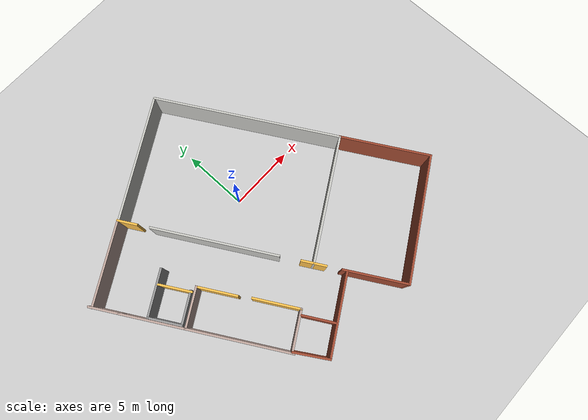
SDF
<sdf version="1.6">
 <world name="default">
  <light name="sun" type="directional">
   <pose>0 0 10 0 -0 0</pose>
   <diffuse>0.8 0.8 0.8 1</diffuse>
   <specular>0.1 0.1 0.1 1</specular>
   <attenuation>
    <range>1000</range>
    <constant>0.9</constant>
    <linear>0.01</linear>
    <quadratic>0.001</quadratic>
   </attenuation>
   <direction>-0.5 0.5 -1</direction>
  </light>
  <model name="ground_plane">
   <static>1</static>
   <link name="link">
    <collision name="collision">
     <geometry><plane><normal>0 0 1</normal><size>100 100</size></plane></geometry>
     <surface><friction><ode><mu>100</mu><mu2>50</mu2></ode></friction></surface>
    </collision>
    <visual name="visual">
     <cast_shadows>0</cast_shadows>
     <geometry><plane><normal>0 0 1</normal><size>100 100</size></plane></geometry>
     <material>
      <script><uri>file://media/materials/scripts/gazebo.material</uri><name>Gazebo/Grey</name></script>
     </material>
    </visual>
   </link>
  </model>
  <gravity>0 0 -9.8</gravity>
  <magnetic_field>6e-06 2.3e-05 -4.2e-05</magnetic_field>
  <atmosphere type="adiabatic"/>
  <physics name="default_physics" default="0" type="ode">
   <max_step_size>0.001</max_step_size>
   <real_time_factor>1</real_time_factor>
   <real_time_update_rate>1000</real_time_update_rate>
  </physics>
  <scene><ambient>0.4 0.4 0.4 1</ambient><background>0.7 0.7 0.7 1</background><shadows>1</shadows></scene>
  <spherical_coordinates>
   <surface_model>EARTH_WGS84</surface_model>
   <latitude_deg>0</latitude_deg>
   <longitude_deg>0</longitude_deg>
   <elevation>0</elevation>
   <heading_deg>0</heading_deg>
  </spherical_coordinates>
  <model name="building_monitor.world">
   <pose>-0.495018 -1.745 0 0 -0 0</pose>
   <link name="Wall_13">
    <collision name="Wall_13_Collision">
     <geometry><box><size>9.25 0.15 2.5</size></box></geometry>
     <pose>0 0 1.25 0 -0 0</pose>
    </collision>
    <visual name="Wall_13_Visual">
     <pose>0 0 1.25 0 -0 0</pose>
     <geometry><box><size>9.25 0.15 2.5</size></box></geometry>
     <material>
      <script><uri>file://media/materials/scripts/gazebo.material</uri><name>Gazebo/CeilingTiled</name></script>
      <ambient>1 0.764706 0.305882 1</ambient>
     </material>
     <meta><layer>0</layer></meta>
    </visual>
    <pose>-3.03306 0.582973 0 0 -0 2.0944</pose>
   </link>
   <link name="Wall_15">
    <collision name="Wall_15_Collision">
     <geometry><box><size>1.5 0.15 2.5</size></box></geometry>
     <pose>0 0 1.25 0 -0 0</pose>
    </collision>
    <visual name="Wall_15_Visual">
     <pose>0 0 1.25 0 -0 0</pose>
     <geometry><box><size>1.5 0.15 2.5</size></box></geometry>
     <material>
      <script><uri>file://media/materials/scripts/gazebo.material</uri><name>Gazebo/Grey</name></script>
      <ambient>1 0.764706 0.305882 1</ambient>
     </material>
     <meta><layer>0</layer></meta>
    </visual>
    <pose>-6.14786 5.96796 0 0 -0 2.0944</pose>
   </link>
   <link name="Wall_2">
    <collision name="Wall_2_Collision">
     <geometry><box><size>9.39101 0.15 2.5</size></box></geometry>
     <pose>0 0 1.25 0 -0 0</pose>
    </collision>
    <visual name="Wall_2_Visual">
     <pose>0 0 1.25 0 -0 0</pose>
     <geometry><box><size>9.39101 0.15 2.5</size></box></geometry>
     <material>
      <script><uri>file://media/materials/scripts/gazebo.material</uri><name>Gazebo/CeilingTiled</name></script>
      <ambient>0.435294 0.796078 0.67451 1</ambient>
     </material>
     <meta><layer>0</layer></meta>
    </visual>
    <pose>-2.34321 8.88263 0 0 0 -2.61806</pose>
   </link>
   <link name="Wall_20">
    <collision name="Wall_20_Collision">
     <geometry><box><size>2.5 0.15 2.5</size></box></geometry>
     <pose>0 0 1.25 0 -0 0</pose>
    </collision>
    <visual name="Wall_20_Visual">
     <pose>0 0 1.25 0 -0 0</pose>
     <geometry><box><size>2.5 0.15 2.5</size></box></geometry>
     <material>
      <script><uri>file://media/materials/scripts/gazebo.material</uri><name>Gazebo/Grey</name></script>
      <ambient>1 1 1 1</ambient>
     </material>
     <meta><layer>0</layer></meta>
    </visual>
    <pose>-9.13452 -0.735835 0 0 -0 2.0944</pose>
   </link>
   <link name="Wall_22">
    <collision name="Wall_22_Collision">
     <geometry><box><size>2.5 0.15 2.5</size></box></geometry>
     <pose>0 0 1.25 0 -0 0</pose>
    </collision>
    <visual name="Wall_22_Visual">
     <pose>0 0 1.25 0 -0 0</pose>
     <geometry><box><size>2.5 0.15 2.5</size></box></geometry>
     <material>
      <script><uri>file://media/materials/scripts/gazebo.material</uri><name>Gazebo/Grey</name></script>
      <ambient>1 0.764706 0.305882 1</ambient>
     </material>
     <meta><layer>0</layer></meta>
    </visual>
    <pose>-7.10369 0.328506 0 0 0 -1.0472</pose>
   </link>
   <link name="Wall_25">
    <collision name="Wall_25_Collision">
     <geometry><box><size>2.5 0.15 2.5</size></box></geometry>
     <pose>0 0 1.25 0 -0 0</pose>
    </collision>
    <visual name="Wall_25_Visual">
     <pose>0 0 1.25 0 -0 0</pose>
     <geometry><box><size>2.5 0.15 2.5</size></box></geometry>
     <material>
      <script><uri>file://media/materials/scripts/gazebo.material</uri><name>Gazebo/Grey</name></script>
      <ambient>1 1 1 1</ambient>
     </material>
     <meta><layer>0</layer></meta>
    </visual>
    <pose>-7.52944 -1.16592 0 0 -0 0.523599</pose>
   </link>
   <link name="Wall_28">
    <collision name="Wall_28_Collision">
     <geometry><box><size>3.5 0.15 2.5</size></box></geometry>
     <pose>0 0 1.25 0 -0 0</pose>
    </collision>
    <visual name="Wall_28_Visual">
     <pose>0 0 1.25 0 -0 0</pose>
     <geometry><box><size>3.5 0.15 2.5</size></box></geometry>
     <material>
      <script><uri>file://media/materials/scripts/gazebo.material</uri><name>Gazebo/Grey</name></script>
      <ambient>1 1 1 1</ambient>
     </material>
     <meta><layer>0</layer></meta>
    </visual>
    <pose>-8.27143 1.11924 0 0 -0 0.523599</pose>
   </link>
   <link name="Wall_30">
    <collision name="Wall_30_Collision">
     <geometry><box><size>3 0.15 2.5</size></box></geometry>
     <pose>0 0 1.25 0 -0 0</pose>
    </collision>
    <visual name="Wall_30_Visual">
     <pose>0 0 1.25 0 -0 0</pose>
     <geometry><box><size>3 0.15 2.5</size></box></geometry>
     <material>
      <script><uri>file://media/materials/scripts/gazebo.material</uri><name>Gazebo/Grey</name></script>
      <ambient>0.760784 0.662745 0.627451 1</ambient>
     </material>
     <meta><layer>0</layer></meta>
    </visual>
    <pose>-7.29934 -1.37095 0 0 -0 0.523599</pose>
   </link>
   <link name="Wall_31">
    <collision name="Wall_31_Collision">
     <geometry><box><size>3 0.15 2.5</size></box></geometry>
     <pose>0 0 1.25 0 -0 0</pose>
    </collision>
    <visual name="Wall_31_Visual">
     <pose>0 0 1.25 0 -0 0</pose>
     <geometry><box><size>3 0.15 2.5</size></box></geometry>
     <material>
      <script><uri>file://media/materials/scripts/gazebo.material</uri><name>Gazebo/Grey</name></script>
      <ambient>1 0.764706 0.305882 1</ambient>
     </material>
     <meta><layer>0</layer></meta>
    </visual>
    <pose>-5.35275 -1.89253 0 0 0 -1.0472</pose>
   </link>
   <link name="Wall_33">
    <collision name="Wall_33_Collision">
     <geometry><box><size>3.5 0.15 2.5</size></box></geometry>
     <pose>0 0 1.25 0 -0 0</pose>
    </collision>
    <visual name="Wall_33_Visual">
     <pose>0 0 1.25 0 -0 0</pose>
     <geometry><box><size>3.5 0.15 2.5</size></box></geometry>
     <material>
      <script><uri>file://media/materials/scripts/gazebo.material</uri><name>Gazebo/Grey</name></script>
      <ambient>1 0.764706 0.305882 1</ambient>
     </material>
     <meta><layer>0</layer></meta>
    </visual>
    <pose>-3.21158 -5.43366 0 0 -0 2.0944</pose>
   </link>
   <link name="Wall_35">
    <collision name="Wall_35_Collision">
     <geometry><box><size>7.5 0.15 2.5</size></box></geometry>
     <pose>0 0 1.25 0 -0 0</pose>
    </collision>
    <visual name="Wall_35_Visual">
     <pose>0 0 1.25 0 -0 0</pose>
     <geometry><box><size>7.5 0.15 2.5</size></box></geometry>
     <material>
      <script><uri>file://media/materials/scripts/gazebo.material</uri><name>Gazebo/Grey</name></script>
      <ambient>0.760784 0.662745 0.627451 1</ambient>
     </material>
     <meta><layer>0</layer></meta>
    </visual>
    <pose>-6.69592 -5.26609 0 0 0 -1.0472</pose>
   </link>
   <link name="Wall_37">
    <collision name="Wall_37_Collision">
     <geometry><box><size>3 0.15 2.5</size></box></geometry>
     <pose>0 0 1.25 0 -0 0</pose>
    </collision>
    <visual name="Wall_37_Visual">
     <pose>0 0 1.25 0 -0 0</pose>
     <geometry><box><size>3 0.15 2.5</size></box></geometry>
     <material>
      <script><uri>file://media/materials/scripts/gazebo.material</uri><name>Gazebo/Grey</name></script>
      <ambient>0.760784 0.662745 0.627451 1</ambient>
     </material>
     <meta><layer>0</layer></meta>
    </visual>
    <pose>-3.60817 -7.59675 0 0 0 -2.61799</pose>
   </link>
   <link name="Wall_39">
    <collision name="Wall_39_Collision">
     <geometry><box><size>6.75 0.15 2.5</size></box></geometry>
     <pose>0 0 1.25 0 -0 0</pose>
    </collision>
    <visual name="Wall_39_Visual">
     <pose>0 0 1.25 0 -0 0</pose>
     <geometry><box><size>6.75 0.15 2.5</size></box></geometry>
     <material>
      <script><uri>file://media/materials/scripts/gazebo.material</uri><name>Gazebo/Bricks</name></script>
      <ambient>1 1 1 1</ambient>
     </material>
     <meta><layer>0</layer></meta>
    </visual>
    <pose>10.2334 -3.65973 0 0 0 -1.0472</pose>
   </link>
   <link name="Wall_40">
    <collision name="Wall_40_Collision">
     <geometry><box><size>9.5 0.15 2.5</size></box></geometry>
     <pose>0 0 1.25 0 -0 0</pose>
    </collision>
    <visual name="Wall_40_Visual">
     <pose>0 0 1.25 0 -0 0</pose>
     <geometry><box><size>9.5 0.15 2.5</size></box></geometry>
     <material>
      <script><uri>file://media/materials/scripts/gazebo.material</uri><name>Gazebo/Bricks</name></script>
      <ambient>0.760784 0.662745 0.627451 1</ambient>
     </material>
     <meta><layer>0</layer></meta>
    </visual>
    <pose>7.83475 -8.85511 0 0 0 -2.61799</pose>
   </link>
   <link name="Wall_41">
    <collision name="Wall_41_Collision">
     <geometry><box><size>4.75 0.15 2.5</size></box></geometry>
     <pose>0 0 1.25 0 -0 0</pose>
    </collision>
    <visual name="Wall_41_Visual">
     <pose>0 0 1.25 0 -0 0</pose>
     <geometry><box><size>4.75 0.15 2.5</size></box></geometry>
     <material>
      <script><uri>file://media/materials/scripts/gazebo.material</uri><name>Gazebo/Bricks</name></script>
      <ambient>0.760784 0.662745 0.627451 1</ambient>
     </material>
     <meta><layer>0</layer></meta>
    </visual>
    <pose>2.63608 -9.20075 0 0 -0 2.0944</pose>
   </link>
   <link name="Wall_5">
    <collision name="Wall_5_Collision">
     <geometry><box><size>14 0.15 2.5</size></box></geometry>
     <pose>0 0 1.25 0 -0 0</pose>
    </collision>
    <visual name="Wall_5_Visual">
     <pose>0 0 1.25 0 -0 0</pose>
     <geometry><box><size>14 0.15 2.5</size></box></geometry>
     <material>
      <script><uri>file://media/materials/scripts/gazebo.material</uri><name>Gazebo/CeilingTiled</name></script>
      <ambient>0.435294 0.796078 0.67451 1</ambient>
     </material>
     <meta><layer>0</layer></meta>
    </visual>
    <pose>5.12092 5.19538 0 0 0 -1.0472</pose>
   </link>
   <link name="Wall_52">
    <collision name="Wall_52_Collision">
     <geometry><box><size>1 0.15 2.5</size></box></geometry>
     <pose>0 0 1.25 0 -0 0</pose>
    </collision>
    <visual name="Wall_52_Visual">
     <pose>0 0 1.25 0 -0 0</pose>
     <geometry><box><size>1 0.15 2.5</size></box></geometry>
     <material>
      <script><uri>file://media/materials/scripts/gazebo.material</uri><name>Gazebo/Grey</name></script>
      <ambient>1 0.764706 0.305882 1</ambient>
     </material>
     <meta><layer>0</layer></meta>
    </visual>
    <pose>0.698583 -5.8449 0 0 0 -1.0472</pose>
   </link>
   <link name="Wall_54">
    <collision name="Wall_54_Collision">
     <geometry><box><size>6 0.15 2.5</size></box></geometry>
     <pose>0 0 1.25 0 -0 0</pose>
    </collision>
    <visual name="Wall_54_Visual">
     <pose>0 0 1.25 0 -0 0</pose>
     <geometry><box><size>6 0.15 2.5</size></box></geometry>
     <material>
      <script><uri>file://media/materials/scripts/gazebo.material</uri><name>Gazebo/Bricks</name></script>
      <ambient>1 1 1 1</ambient>
     </material>
     <meta><layer>0</layer></meta>
    </visual>
    <pose>-0.974991 -8.99699 0 0 -0 0.523599</pose>
   </link>
   <link name="Wall_56">
    <collision name="Wall_56_Collision">
     <geometry><box><size>2.6805 0.15 2.5</size></box></geometry>
     <pose>0 0 1.25 0 -0 0</pose>
    </collision>
    <visual name="Wall_56_Visual">
     <pose>0 0 1.25 0 -0 0</pose>
     <geometry><box><size>2.6805 0.15 2.5</size></box></geometry>
     <material>
      <script><uri>file://media/materials/scripts/gazebo.material</uri><name>Gazebo/Bricks</name></script>
      <ambient>1 1 1 1</ambient>
     </material>
     <meta><layer>0</layer></meta>
    </visual>
    <pose>-4.17518 -9.38437 0 0 -0 2.12613</pose>
   </link>
   <link name="Wall_6">
    <collision name="Wall_6_Collision">
     <geometry><box><size>9.5 0.15 2.5</size></box></geometry>
     <pose>0 0 1.25 0 -0 0</pose>
    </collision>
    <visual name="Wall_6_Visual">
     <pose>0 0 1.25 0 -0 0</pose>
     <geometry><box><size>9.5 0.15 2.5</size></box></geometry>
     <material>
      <script><uri>file://media/materials/scripts/gazebo.material</uri><name>Gazebo/CeilingTiled</name></script>
      <ambient>0.435294 0.796078 0.67451 1</ambient>
     </material>
     <meta><layer>0</layer></meta>
    </visual>
    <pose>4.53475 -3.13934 0 0 0 -2.61799</pose>
   </link>
   <link name="Wall_60">
    <collision name="Wall_60_Collision">
     <geometry><box><size>4.75 0.15 2.5</size></box></geometry>
     <pose>0 0 1.25 0 -0 0</pose>
    </collision>
    <visual name="Wall_60_Visual">
     <pose>0 0 1.25 0 -0 0</pose>
     <geometry><box><size>4.75 0.15 2.5</size></box></geometry>
     <material>
      <script><uri>file://media/materials/scripts/gazebo.material</uri><name>Gazebo/Grey</name></script>
      <ambient>0.760784 0.662745 0.627451 1</ambient>
     </material>
     <meta><layer>0</layer></meta>
    </visual>
    <pose>-9.68342 -0.091589 0 0 -0 2.0944</pose>
   </link>
   <link name="Wall_61">
    <collision name="Wall_61_Collision">
     <geometry><box><size>2.25 0.15 2.5</size></box></geometry>
     <pose>0 0 1.25 0 -0 0</pose>
    </collision>
    <visual name="Wall_61_Visual">
     <pose>0 0 1.25 0 -0 0</pose>
     <geometry><box><size>2.25 0.15 2.5</size></box></geometry>
     <material>
      <script><uri>file://media/materials/scripts/gazebo.material</uri><name>Gazebo/Grey</name></script>
      <ambient>0.760784 0.662745 0.627451 1</ambient>
     </material>
     <meta><layer>0</layer></meta>
    </visual>
    <pose>-11.3584 2.8096 0 0 -0 2.0944</pose>
   </link>
   <link name="Wall_63">
    <collision name="Wall_63_Collision">
     <geometry><box><size>6.25 0.15 2.5</size></box></geometry>
     <pose>0 0 1.25 0 -0 0</pose>
    </collision>
    <visual name="Wall_63_Visual">
     <pose>0 0 1.25 0 -0 0</pose>
     <geometry><box><size>6.25 0.15 2.5</size></box></geometry>
     <material>
      <script><uri>file://media/materials/scripts/gazebo.material</uri><name>Gazebo/Grey</name></script>
      <ambient>0.760784 0.662745 0.627451 1</ambient>
     </material>
     <meta><layer>0</layer></meta>
    </visual>
    <pose>-9.12674 5.02753 0 0 0 -2.61799</pose>
   </link>
   <link name="Wall_65">
    <collision name="Wall_65_Collision">
     <geometry><box><size>2.5 0.15 2.5</size></box></geometry>
     <pose>0 0 1.25 0 -0 0</pose>
    </collision>
    <visual name="Wall_65_Visual">
     <pose>0 0 1.25 0 -0 0</pose>
     <geometry><box><size>2.5 0.15 2.5</size></box></geometry>
     <material>
      <script><uri>file://media/materials/scripts/gazebo.material</uri><name>Gazebo/Bricks</name></script>
      <ambient>1 1 1 1</ambient>
     </material>
     <meta><layer>0</layer></meta>
    </visual>
    <pose>-2.1035 -8.15597 0 0 0 -1.0472</pose>
   </link>
   <link name="Wall_8">
    <collision name="Wall_8_Collision">
     <geometry><box><size>1 0.15 2.5</size></box></geometry>
     <pose>0 0 1.25 0 -0 0</pose>
    </collision>
    <visual name="Wall_8_Visual">
     <pose>0 0 1.25 0 -0 0</pose>
     <geometry><box><size>1 0.15 2.5</size></box></geometry>
     <material>
      <script><uri>file://media/materials/scripts/gazebo.material</uri><name>Gazebo/Grey</name></script>
      <ambient>1 0.764706 0.305882 1</ambient>
     </material>
     <meta><layer>0</layer></meta>
    </visual>
    <pose>0.273583 -5.10878 0 0 -0 2.0944</pose>
   </link>
   <static>1</static>
  </model>
 </world>
</sdf>
